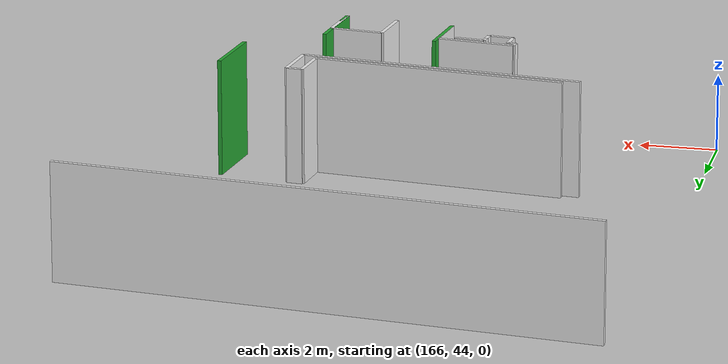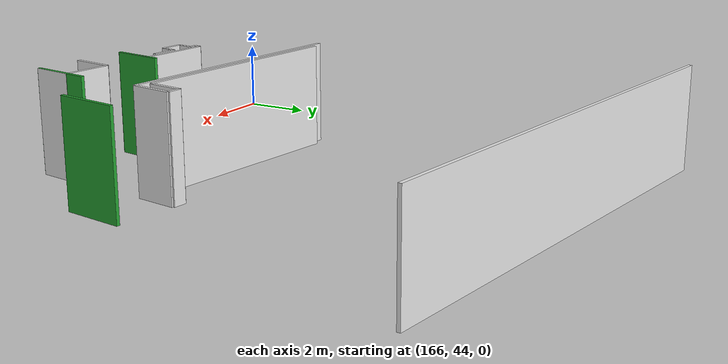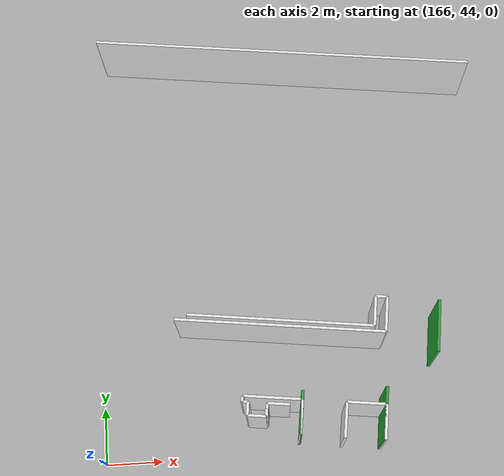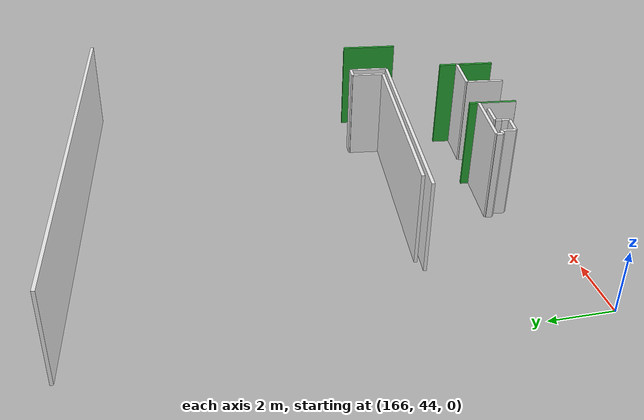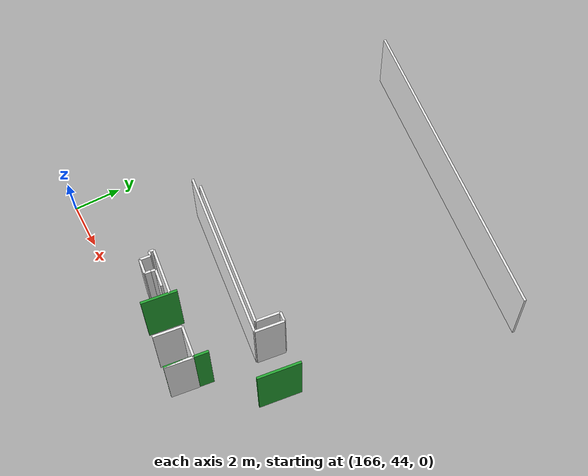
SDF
<sdf version="1.6">
 <world name="default">
  <model name="wall_175.8_44.9_1.5">
   <static>true</static>
   <pose>175.80500000022585 44.86500000022352 1.5 0 0 1.4540117310915928</pose>
   <link name="link">
    <visual name="visual">
     <geometry><box><size>1.802276338498982 0.1 3</size></box></geometry>
     <material>
      <script><uri>file://media/materials/scripts/gazebo.material</uri><name>Gazebo/Green</name></script>
     </material>
    </visual>
    <collision name="collision"><geometry><box><size>1.802276338498982 0.1 3</size></box></geometry></collision>
   </link>
  </model>
  <model name="wall_177.8_47.7_1.5">
   <static>true</static>
   <pose>177.8499999999185 47.734999999869615 1.5 0 0 -1.6930880506520969</pose>
   <link name="link">
    <visual name="visual">
     <geometry><box><size>1.803468879749112 0.1 3</size></box></geometry>
     <material>
      <script><uri>file://media/materials/scripts/gazebo.material</uri><name>Gazebo/Green</name></script>
     </material>
    </visual>
    <collision name="collision"><geometry><box><size>1.803468879749112 0.1 3</size></box></geometry></collision>
   </link>
  </model>
  <model name="wall_173.0_45.1_1.5">
   <static>true</static>
   <pose>172.96000000007916 45.05499999993481 1.5 0 0 1.4505735400033473</pose>
   <link name="link">
    <visual name="visual">
     <geometry><box><size>1.5008331017600727 0.1 3</size></box></geometry>
     <material>
      <script><uri>file://media/materials/scripts/gazebo.material</uri><name>Gazebo/Green</name></script>
     </material>
    </visual>
    <collision name="collision"><geometry><box><size>1.5008331017600727 0.1 3</size></box></geometry></collision>
   </link>
  </model>
  <model name="wall_175.8_44.6_1.5">
   <static>true</static>
   <pose>175.77499999999418 44.56500000017695 1.5 0 0 1.4454072064764434</pose>
   <link name="link">
    <visual name="visual">
     <geometry><box><size>1.199416524755487 0.1 3</size></box></geometry>
     <material>
      <script><uri>file://media/materials/scripts/gazebo.material</uri><name>Gazebo/White</name></script>
     </material>
    </visual>
    <collision name="collision"><geometry><box><size>1.199416524755487 0.1 3</size></box></geometry></collision>
   </link>
  </model>
  <model name="wall_175.2_45.2_1.5">
   <static>true</static>
   <pose>175.17999999999302 45.23999999999069 1.5 0 0 3.0227523092521484</pose>
   <link name="link">
    <visual name="visual">
     <geometry><box><size>1.3495184325570784 0.1 3</size></box></geometry>
     <material>
      <script><uri>file://media/materials/scripts/gazebo.material</uri><name>Gazebo/White</name></script>
     </material>
    </visual>
    <collision name="collision"><geometry><box><size>1.3495184325570784 0.1 3</size></box></geometry></collision>
   </link>
  </model>
  <model name="wall_174.4_44.7_1.5">
   <static>true</static>
   <pose>174.43499999999767 44.7249999998603 1.5 0 0 -1.696185447161499</pose>
   <link name="link">
    <visual name="visual">
     <geometry><box><size>1.1994165247627664 0.1 3</size></box></geometry>
     <material>
      <script><uri>file://media/materials/scripts/gazebo.material</uri><name>Gazebo/White</name></script>
     </material>
    </visual>
    <collision name="collision"><geometry><box><size>1.1994165247627664 0.1 3</size></box></geometry></collision>
   </link>
  </model>
  <model name="wall_172.9_44.9_1.5">
   <static>true</static>
   <pose>172.94000000000233 44.90500000002794 1.5 0 0 1.4536875822110042</pose>
   <link name="link">
    <visual name="visual">
     <geometry><box><size>1.198206993749794 0.1 3</size></box></geometry>
     <material>
      <script><uri>file://media/materials/scripts/gazebo.material</uri><name>Gazebo/White</name></script>
     </material>
    </visual>
    <collision name="collision"><geometry><box><size>1.198206993749794 0.1 3</size></box></geometry></collision>
   </link>
  </model>
  <model name="wall_172.0_45.6_1.5">
   <static>true</static>
   <pose>172.0100000000093 45.62000000011176 1.5 0 0 3.0221637274612827</pose>
   <link name="link">
    <visual name="visual">
     <geometry><box><size>2.0143485299488986 0.1 3</size></box></geometry>
     <material>
      <script><uri>file://media/materials/scripts/gazebo.material</uri><name>Gazebo/White</name></script>
     </material>
    </visual>
    <collision name="collision"><geometry><box><size>2.0143485299488986 0.1 3</size></box></geometry></collision>
   </link>
  </model>
  <model name="wall_171.0_45.6_1.5">
   <static>true</static>
   <pose>170.99499999999534 45.64500000001863 1.5 0 0 -1.7273982035881303</pose>
   <link name="link">
    <visual name="visual">
     <geometry><box><size>0.1923538410258384 0.1 3</size></box></geometry>
     <material>
      <script><uri>file://media/materials/scripts/gazebo.material</uri><name>Gazebo/White</name></script>
     </material>
    </visual>
    <collision name="collision"><geometry><box><size>0.1923538410258384 0.1 3</size></box></geometry></collision>
   </link>
  </model>
  <model name="wall_172.4_48.1_1.5">
   <static>true</static>
   <pose>172.40499999999884 48.074999999953434 1.5 0 0 -0.11975615108864926</pose>
   <link name="link">
    <visual name="visual">
     <geometry><box><size>7.2821562740685915 0.1 3</size></box></geometry>
     <material>
      <script><uri>file://media/materials/scripts/gazebo.material</uri><name>Gazebo/White</name></script>
     </material>
    </visual>
    <collision name="collision"><geometry><box><size>7.2821562740685915 0.1 3</size></box></geometry></collision>
   </link>
  </model>
  <model name="wall_176.1_48.2_1.5">
   <static>true</static>
   <pose>176.09500000000116 48.24500000011176 1.5 0 0 1.4474586259198403</pose>
   <link name="link">
    <visual name="visual">
     <geometry><box><size>1.2192620718694447 0.1 3</size></box></geometry>
     <material>
      <script><uri>file://media/materials/scripts/gazebo.material</uri><name>Gazebo/White</name></script>
     </material>
    </visual>
    <collision name="collision"><geometry><box><size>1.2192620718694447 0.1 3</size></box></geometry></collision>
   </link>
  </model>
  <model name="wall_172.2_45.4_1.5">
   <static>true</static>
   <pose>172.21000000002095 45.39500000001863 1.5 0 0 -0.11787210300242888</pose>
   <link name="link">
    <visual name="visual">
     <geometry><box><size>0.7653103945376242 0.1 3</size></box></geometry>
     <material>
      <script><uri>file://media/materials/scripts/gazebo.material</uri><name>Gazebo/White</name></script>
     </material>
    </visual>
    <collision name="collision"><geometry><box><size>0.7653103945376242 0.1 3</size></box></geometry></collision>
   </link>
  </model>
  <model name="wall_171.1_45.5_1.5">
   <static>true</static>
   <pose>171.0799999999872 45.53499999991618 1.5 0 0 -0.14888994659904642</pose>
   <link name="link">
    <visual name="visual">
     <geometry><box><size>0.20223748414268597 0.1 3</size></box></geometry>
     <material>
      <script><uri>file://media/materials/scripts/gazebo.material</uri><name>Gazebo/White</name></script>
     </material>
    </visual>
    <collision name="collision"><geometry><box><size>0.20223748414268597 0.1 3</size></box></geometry></collision>
   </link>
  </model>
  <model name="wall_171.2_45.3_1.5">
   <static>true</static>
   <pose>171.15499999999884 45.300000000046566 1.5 0 0 -1.6839473083735081</pose>
   <link name="link">
    <visual name="visual">
     <geometry><box><size>0.4428317964528541 0.1 3</size></box></geometry>
     <material>
      <script><uri>file://media/materials/scripts/gazebo.material</uri><name>Gazebo/White</name></script>
     </material>
    </visual>
    <collision name="collision"><geometry><box><size>0.4428317964528541 0.1 3</size></box></geometry></collision>
   </link>
  </model>
  <model name="wall_171.5_45.0_1.5">
   <static>true</static>
   <pose>171.45000000001164 45.04000000003725 1.5 0 0 -0.12435499465869924</pose>
   <link name="link">
    <visual name="visual">
     <geometry><box><size>0.6449806198869872 0.1 3</size></box></geometry>
     <material>
      <script><uri>file://media/materials/scripts/gazebo.material</uri><name>Gazebo/White</name></script>
     </material>
    </visual>
    <collision name="collision"><geometry><box><size>0.6449806198869872 0.1 3</size></box></geometry></collision>
   </link>
  </model>
  <model name="wall_171.8_45.1_1.5">
   <static>true</static>
   <pose>171.7850000000035 45.125 1.5 0 0 1.4513674008959114</pose>
   <link name="link">
    <visual name="visual">
     <geometry><box><size>0.25179356623667715 0.1 3</size></box></geometry>
     <material>
      <script><uri>file://media/materials/scripts/gazebo.material</uri><name>Gazebo/White</name></script>
     </material>
    </visual>
    <collision name="collision"><geometry><box><size>0.25179356623667715 0.1 3</size></box></geometry></collision>
   </link>
  </model>
  <model name="wall_171.8_45.3_1.5">
   <static>true</static>
   <pose>171.81500000000233 45.34499999997206 1.5 0 0 1.4141944496240997</pose>
   <link name="link">
    <visual name="visual">
     <geometry><box><size>0.19235384056587543 0.1 3</size></box></geometry>
     <material>
      <script><uri>file://media/materials/scripts/gazebo.material</uri><name>Gazebo/White</name></script>
     </material>
    </visual>
    <collision name="collision"><geometry><box><size>0.19235384056587543 0.1 3</size></box></geometry></collision>
   </link>
  </model>
  <model name="wall_176.0_48.9_1.5">
   <static>true</static>
   <pose>175.97000000000116 48.87000000011176 1.5 0 0 3.0419240009977764</pose>
   <link name="link">
    <visual name="visual">
     <geometry><box><size>0.4019950248137912 0.1 3</size></box></geometry>
     <material>
      <script><uri>file://media/materials/scripts/gazebo.material</uri><name>Gazebo/White</name></script>
     </material>
    </visual>
    <collision name="collision"><geometry><box><size>0.4019950248137912 0.1 3</size></box></geometry></collision>
   </link>
  </model>
  <model name="wall_175.7_48.4_1.5">
   <static>true</static>
   <pose>175.71000000002095 48.38000000012107 1.5 0 0 -1.687905071355139</pose>
   <link name="link">
    <visual name="visual">
     <geometry><box><size>1.0270345661353761 0.1 3</size></box></geometry>
     <material>
      <script><uri>file://media/materials/scripts/gazebo.material</uri><name>Gazebo/White</name></script>
     </material>
    </visual>
    <collision name="collision"><geometry><box><size>1.0270345661353761 0.1 3</size></box></geometry></collision>
   </link>
  </model>
  <model name="wall_172.4_48.3_1.5">
   <static>true</static>
   <pose>172.43499999999767 48.26000000000931 1.5 0 0 3.0208760957199403</pose>
   <link name="link">
    <visual name="visual">
     <geometry><box><size>6.4771367131116735 0.1 3</size></box></geometry>
     <material>
      <script><uri>file://media/materials/scripts/gazebo.material</uri><name>Gazebo/White</name></script>
     </material>
    </visual>
    <collision name="collision"><geometry><box><size>6.4771367131116735 0.1 3</size></box></geometry></collision>
   </link>
  </model>
  <model name="wall_173.1_58.2_1.5">
   <static>true</static>
   <pose>173.09500000000116 58.21999999997206 1.5 0 0 -0.11951661708533105</pose>
   <link name="link">
    <visual name="visual">
     <geometry><box><size>13.586923860836658 0.1 3</size></box></geometry>
     <material>
      <script><uri>file://media/materials/scripts/gazebo.material</uri><name>Gazebo/White</name></script>
     </material>
    </visual>
    <collision name="collision"><geometry><box><size>13.586923860836658 0.1 3</size></box></geometry></collision>
   </link>
  </model>
 </world>
</sdf>
